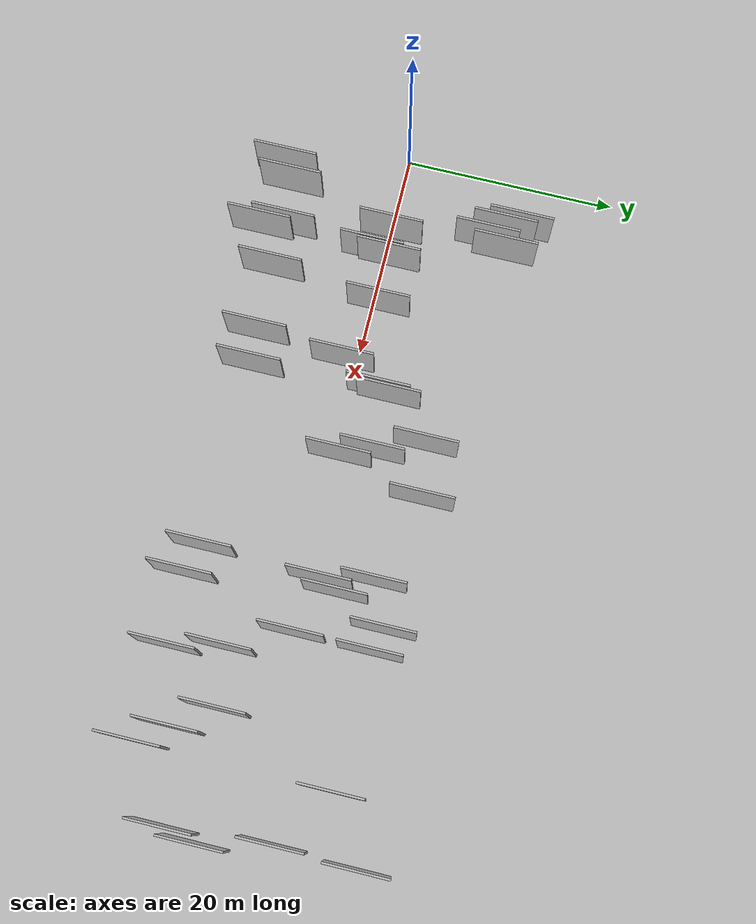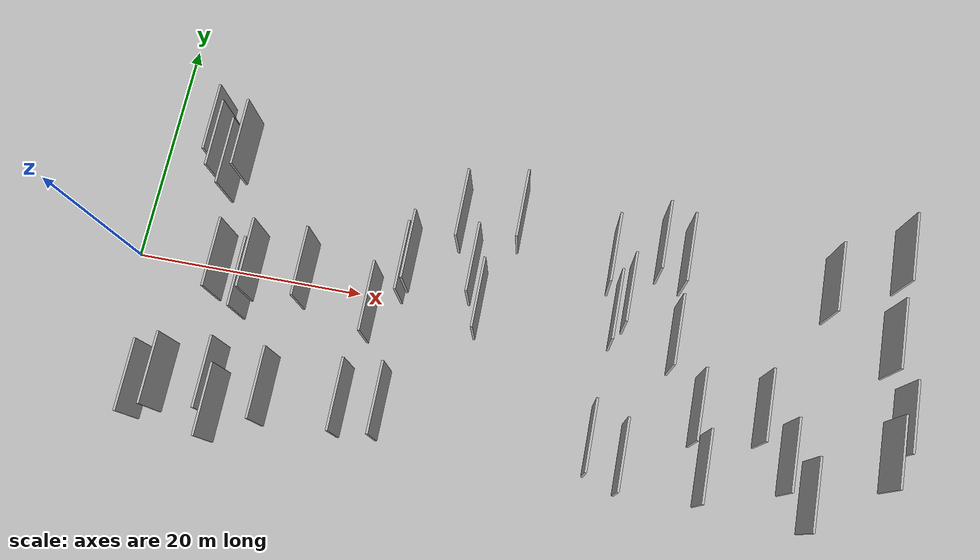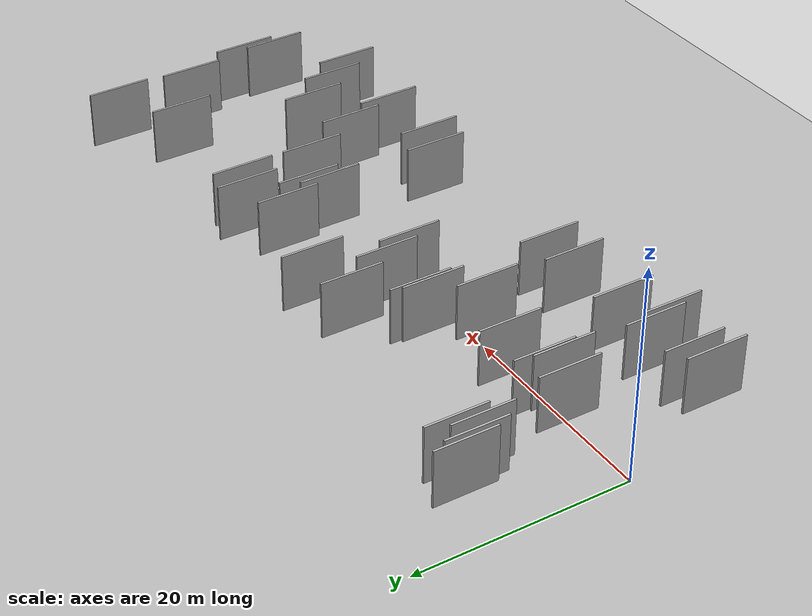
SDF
<?xml version="1.0" encoding="utf-8"?>

<sdf version="1.6">

   <world name="default">

      <gui fullscreen="0">

         <camera name="user_camera">

            <pose>-15 0 4.57585 0 0 0</pose>

            <view_controller>orbit</view_controller>

         </camera>

      </gui>

      <scene>

         <sky>

           <clouds>

             <speed>12</speed>

           </clouds>

         </sky>

         <ambient>0.4 0.4 0.4 1</ambient>

         <background>0.7 0.7 0.7 1</background>

         <shadows>1</shadows>

      </scene>

      <gravity>0 0 -9.8066</gravity>

      <magnetic_field>6e-06 2.3e-05 -4.2e-05</magnetic_field>

      <physics default="0" name="default_physics" type="ode">

         <ode>

            <solver>

               <type>quick</type>

               <iters>10</iters>

               <sor>1.0</sor>

               <use_dynamic_moi_rescaling>0</use_dynamic_moi_rescaling>

            </solver>

            <constraints>

               <cfm>0</cfm>

               <erp>0.2</erp>

               <contact_max_correcting_vel>100</contact_max_correcting_vel>

               <contact_surface_layer>0.001</contact_surface_layer>

            </constraints>

         </ode>

         <max_step_size>0.004</max_step_size>

         <real_time_factor>1</real_time_factor>

         <real_time_update_rate>250</real_time_update_rate>

      </physics>

      <light name="sun" type="directional">

         <cast_shadows>1</cast_shadows>

         <pose>0 0 10 0 0 0</pose>

         <diffuse>0.8 0.8 0.8 1</diffuse>

         <specular>0.2 0.2 0.2 1</specular>

         <attenuation>

            <range>1000</range>

            <constant>0.9</constant>

            <linear>0.01</linear>

            <quadratic>0.001</quadratic>

         </attenuation>

         <direction>-0.5 0.1 -0.9</direction>

      </light>

      <include>

         <name>ground_plane_1</name>

         <uri>model://HANNAS_ground_plane</uri>

         <pose>0 0 0  0 0 0</pose>

      </include>

      <include>

         <name>ground_plane_2</name>

         <uri>model://HANNAS_ground_plane</uri>

         <pose>100 0 0  0 0 0</pose>

      </include>

      <model name="HANNAS_wall_1">

         <static>1</static>

         <pose frame="">24.0969 3.7541 0.0 0.000000 0.000000 1.570796</pose>

         <link name="link">

            <pose frame="">0 0 3.00 0 0 0</pose>

            <collision name="collision">

               <geometry>

                  <box>

                     <size>6.00 0.2 6.00</size>

                  </box>

               </geometry>

               <max_contacts>10</max_contacts>

               <surface>

                  <contact>

                     <ode/>

                  </contact>

                  <bounce/>

                  <friction>

                     <torsional>

                        <ode/>

                     </torsional>

                     <ode/>

                  </friction>

               </surface>

            </collision>

            <visual name="visual">

               <cast_shadows>0</cast_shadows>

               <geometry>

                  <box>

                     <size>6.00 0.2 6.00</size>

                  </box>

               </geometry>

               <material>

                  <script>

                     <uri>model://HANNAS_wall/materials/scripts</uri>

                     <uri>model://HANNAS_wall/materials/textures</uri>

                     <name>vrc/HANNAS_wall</name>

                  </script>

               </material>

            </visual>

            <self_collide>0</self_collide>

            <enable_wind>0</enable_wind>

            <kinematic>0</kinematic>

         </link>

      </model>

      <model name="HANNAS_wall_2">

         <static>1</static>

         <pose frame="">47.4077 0.6217 0.0 0.000000 0.000000 1.570796</pose>

         <link name="link">

            <pose frame="">0 0 3.00 0 0 0</pose>

            <collision name="collision">

               <geometry>

                  <box>

                     <size>6.00 0.2 6.00</size>

                  </box>

               </geometry>

               <max_contacts>10</max_contacts>

               <surface>

                  <contact>

                     <ode/>

                  </contact>

                  <bounce/>

                  <friction>

                     <torsional>

                        <ode/>

                     </torsional>

                     <ode/>

                  </friction>

               </surface>

            </collision>

            <visual name="visual">

               <cast_shadows>0</cast_shadows>

               <geometry>

                  <box>

                     <size>6.00 0.2 6.00</size>

                  </box>

               </geometry>

               <material>

                  <script>

                     <uri>model://HANNAS_wall/materials/scripts</uri>

                     <uri>model://HANNAS_wall/materials/textures</uri>

                     <name>vrc/HANNAS_wall</name>

                  </script>

               </material>

            </visual>

            <self_collide>0</self_collide>

            <enable_wind>0</enable_wind>

            <kinematic>0</kinematic>

         </link>

      </model>

      <model name="HANNAS_wall_3">

         <static>1</static>

         <pose frame="">41.2403 6.6103 0.0 0.000000 0.000000 1.570796</pose>

         <link name="link">

            <pose frame="">0 0 3.00 0 0 0</pose>

            <collision name="collision">

               <geometry>

                  <box>

                     <size>6.00 0.2 6.00</size>

                  </box>

               </geometry>

               <max_contacts>10</max_contacts>

               <surface>

                  <contact>

                     <ode/>

                  </contact>

                  <bounce/>

                  <friction>

                     <torsional>

                        <ode/>

                     </torsional>

                     <ode/>

                  </friction>

               </surface>

            </collision>

            <visual name="visual">

               <cast_shadows>0</cast_shadows>

               <geometry>

                  <box>

                     <size>6.00 0.2 6.00</size>

                  </box>

               </geometry>

               <material>

                  <script>

                     <uri>model://HANNAS_wall/materials/scripts</uri>

                     <uri>model://HANNAS_wall/materials/textures</uri>

                     <name>vrc/HANNAS_wall</name>

                  </script>

               </material>

            </visual>

            <self_collide>0</self_collide>

            <enable_wind>0</enable_wind>

            <kinematic>0</kinematic>

         </link>

      </model>

      <model name="HANNAS_wall_4">

         <static>1</static>

         <pose frame="">65.8121 11.1153 0.0 0.000000 0.000000 1.570796</pose>

         <link name="link">

            <pose frame="">0 0 3.00 0 0 0</pose>

            <collision name="collision">

               <geometry>

                  <box>

                     <size>6.00 0.2 6.00</size>

                  </box>

               </geometry>

               <max_contacts>10</max_contacts>

               <surface>

                  <contact>

                     <ode/>

                  </contact>

                  <bounce/>

                  <friction>

                     <torsional>

                        <ode/>

                     </torsional>

                     <ode/>

                  </friction>

               </surface>

            </collision>

            <visual name="visual">

               <cast_shadows>0</cast_shadows>

               <geometry>

                  <box>

                     <size>6.00 0.2 6.00</size>

                  </box>

               </geometry>

               <material>

                  <script>

                     <uri>model://HANNAS_wall/materials/scripts</uri>

                     <uri>model://HANNAS_wall/materials/textures</uri>

                     <name>vrc/HANNAS_wall</name>

                  </script>

               </material>

            </visual>

            <self_collide>0</self_collide>

            <enable_wind>0</enable_wind>

            <kinematic>0</kinematic>

         </link>

      </model>

      <model name="HANNAS_wall_5">

         <static>1</static>

         <pose frame="">3.9271 -11.1052 0.0 0.000000 0.000000 1.570796</pose>

         <link name="link">

            <pose frame="">0 0 3.00 0 0 0</pose>

            <collision name="collision">

               <geometry>

                  <box>

                     <size>6.00 0.2 6.00</size>

                  </box>

               </geometry>

               <max_contacts>10</max_contacts>

               <surface>

                  <contact>

                     <ode/>

                  </contact>

                  <bounce/>

                  <friction>

                     <torsional>

                        <ode/>

                     </torsional>

                     <ode/>

                  </friction>

               </surface>

            </collision>

            <visual name="visual">

               <cast_shadows>0</cast_shadows>

               <geometry>

                  <box>

                     <size>6.00 0.2 6.00</size>

                  </box>

               </geometry>

               <material>

                  <script>

                     <uri>model://HANNAS_wall/materials/scripts</uri>

                     <uri>model://HANNAS_wall/materials/textures</uri>

                     <name>vrc/HANNAS_wall</name>

                  </script>

               </material>

            </visual>

            <self_collide>0</self_collide>

            <enable_wind>0</enable_wind>

            <kinematic>0</kinematic>

         </link>

      </model>

      <model name="HANNAS_wall_6">

         <static>1</static>

         <pose frame="">66.9585 -3.0367 0.0 0.000000 0.000000 1.570796</pose>

         <link name="link">

            <pose frame="">0 0 3.00 0 0 0</pose>

            <collision name="collision">

               <geometry>

                  <box>

                     <size>6.00 0.2 6.00</size>

                  </box>

               </geometry>

               <max_contacts>10</max_contacts>

               <surface>

                  <contact>

                     <ode/>

                  </contact>

                  <bounce/>

                  <friction>

                     <torsional>

                        <ode/>

                     </torsional>

                     <ode/>

                  </friction>

               </surface>

            </collision>

            <visual name="visual">

               <cast_shadows>0</cast_shadows>

               <geometry>

                  <box>

                     <size>6.00 0.2 6.00</size>

                  </box>

               </geometry>

               <material>

                  <script>

                     <uri>model://HANNAS_wall/materials/scripts</uri>

                     <uri>model://HANNAS_wall/materials/textures</uri>

                     <name>vrc/HANNAS_wall</name>

                  </script>

               </material>

            </visual>

            <self_collide>0</self_collide>

            <enable_wind>0</enable_wind>

            <kinematic>0</kinematic>

         </link>

      </model>

      <model name="HANNAS_wall_7">

         <static>1</static>

         <pose frame="">42.1448 1.8223 0.0 0.000000 0.000000 1.570796</pose>

         <link name="link">

            <pose frame="">0 0 3.00 0 0 0</pose>

            <collision name="collision">

               <geometry>

                  <box>

                     <size>6.00 0.2 6.00</size>

                  </box>

               </geometry>

               <max_contacts>10</max_contacts>

               <surface>

                  <contact>

                     <ode/>

                  </contact>

                  <bounce/>

                  <friction>

                     <torsional>

                        <ode/>

                     </torsional>

                     <ode/>

                  </friction>

               </surface>

            </collision>

            <visual name="visual">

               <cast_shadows>0</cast_shadows>

               <geometry>

                  <box>

                     <size>6.00 0.2 6.00</size>

                  </box>

               </geometry>

               <material>

                  <script>

                     <uri>model://HANNAS_wall/materials/scripts</uri>

                     <uri>model://HANNAS_wall/materials/textures</uri>

                     <name>vrc/HANNAS_wall</name>

                  </script>

               </material>

            </visual>

            <self_collide>0</self_collide>

            <enable_wind>0</enable_wind>

            <kinematic>0</kinematic>

         </link>

      </model>

      <model name="HANNAS_wall_8">

         <static>1</static>

         <pose frame="">30.6355 0.7155 0.0 0.000000 0.000000 1.570796</pose>

         <link name="link">

            <pose frame="">0 0 3.00 0 0 0</pose>

            <collision name="collision">

               <geometry>

                  <box>

                     <size>6.00 0.2 6.00</size>

                  </box>

               </geometry>

               <max_contacts>10</max_contacts>

               <surface>

                  <contact>

                     <ode/>

                  </contact>

                  <bounce/>

                  <friction>

                     <torsional>

                        <ode/>

                     </torsional>

                     <ode/>

                  </friction>

               </surface>

            </collision>

            <visual name="visual">

               <cast_shadows>0</cast_shadows>

               <geometry>

                  <box>

                     <size>6.00 0.2 6.00</size>

                  </box>

               </geometry>

               <material>

                  <script>

                     <uri>model://HANNAS_wall/materials/scripts</uri>

                     <uri>model://HANNAS_wall/materials/textures</uri>

                     <name>vrc/HANNAS_wall</name>

                  </script>

               </material>

            </visual>

            <self_collide>0</self_collide>

            <enable_wind>0</enable_wind>

            <kinematic>0</kinematic>

         </link>

      </model>

      <model name="HANNAS_wall_9">

         <static>1</static>

         <pose frame="">27.8346 8.1370 0.0 0.000000 0.000000 1.570796</pose>

         <link name="link">

            <pose frame="">0 0 3.00 0 0 0</pose>

            <collision name="collision">

               <geometry>

                  <box>

                     <size>6.00 0.2 6.00</size>

                  </box>

               </geometry>

               <max_contacts>10</max_contacts>

               <surface>

                  <contact>

                     <ode/>

                  </contact>

                  <bounce/>

                  <friction>

                     <torsional>

                        <ode/>

                     </torsional>

                     <ode/>

                  </friction>

               </surface>

            </collision>

            <visual name="visual">

               <cast_shadows>0</cast_shadows>

               <geometry>

                  <box>

                     <size>6.00 0.2 6.00</size>

                  </box>

               </geometry>

               <material>

                  <script>

                     <uri>model://HANNAS_wall/materials/scripts</uri>

                     <uri>model://HANNAS_wall/materials/textures</uri>

                     <name>vrc/HANNAS_wall</name>

                  </script>

               </material>

            </visual>

            <self_collide>0</self_collide>

            <enable_wind>0</enable_wind>

            <kinematic>0</kinematic>

         </link>

      </model>

      <model name="HANNAS_wall_10">

         <static>1</static>

         <pose frame="">41.7256 -9.1424 0.0 0.000000 0.000000 1.570796</pose>

         <link name="link">

            <pose frame="">0 0 3.00 0 0 0</pose>

            <collision name="collision">

               <geometry>

                  <box>

                     <size>6.00 0.2 6.00</size>

                  </box>

               </geometry>

               <max_contacts>10</max_contacts>

               <surface>

                  <contact>

                     <ode/>

                  </contact>

                  <bounce/>

                  <friction>

                     <torsional>

                        <ode/>

                     </torsional>

                     <ode/>

                  </friction>

               </surface>

            </collision>

            <visual name="visual">

               <cast_shadows>0</cast_shadows>

               <geometry>

                  <box>

                     <size>6.00 0.2 6.00</size>

                  </box>

               </geometry>

               <material>

                  <script>

                     <uri>model://HANNAS_wall/materials/scripts</uri>

                     <uri>model://HANNAS_wall/materials/textures</uri>

                     <name>vrc/HANNAS_wall</name>

                  </script>

               </material>

            </visual>

            <self_collide>0</self_collide>

            <enable_wind>0</enable_wind>

            <kinematic>0</kinematic>

         </link>

      </model>

      <model name="HANNAS_wall_11">

         <static>1</static>

         <pose frame="">51.1057 -9.8999 0.0 0.000000 0.000000 1.570796</pose>

         <link name="link">

            <pose frame="">0 0 3.00 0 0 0</pose>

            <collision name="collision">

               <geometry>

                  <box>

                     <size>6.00 0.2 6.00</size>

                  </box>

               </geometry>

               <max_contacts>10</max_contacts>

               <surface>

                  <contact>

                     <ode/>

                  </contact>

                  <bounce/>

                  <friction>

                     <torsional>

                        <ode/>

                     </torsional>

                     <ode/>

                  </friction>

               </surface>

            </collision>

            <visual name="visual">

               <cast_shadows>0</cast_shadows>

               <geometry>

                  <box>

                     <size>6.00 0.2 6.00</size>

                  </box>

               </geometry>

               <material>

                  <script>

                     <uri>model://HANNAS_wall/materials/scripts</uri>

                     <uri>model://HANNAS_wall/materials/textures</uri>

                     <name>vrc/HANNAS_wall</name>

                  </script>

               </material>

            </visual>

            <self_collide>0</self_collide>

            <enable_wind>0</enable_wind>

            <kinematic>0</kinematic>

         </link>

      </model>

      <model name="HANNAS_wall_12">

         <static>1</static>

         <pose frame="">20.9469 -9.6043 0.0 0.000000 0.000000 1.570796</pose>

         <link name="link">

            <pose frame="">0 0 3.00 0 0 0</pose>

            <collision name="collision">

               <geometry>

                  <box>

                     <size>6.00 0.2 6.00</size>

                  </box>

               </geometry>

               <max_contacts>10</max_contacts>

               <surface>

                  <contact>

                     <ode/>

                  </contact>

                  <bounce/>

                  <friction>

                     <torsional>

                        <ode/>

                     </torsional>

                     <ode/>

                  </friction>

               </surface>

            </collision>

            <visual name="visual">

               <cast_shadows>0</cast_shadows>

               <geometry>

                  <box>

                     <size>6.00 0.2 6.00</size>

                  </box>

               </geometry>

               <material>

                  <script>

                     <uri>model://HANNAS_wall/materials/scripts</uri>

                     <uri>model://HANNAS_wall/materials/textures</uri>

                     <name>vrc/HANNAS_wall</name>

                  </script>

               </material>

            </visual>

            <self_collide>0</self_collide>

            <enable_wind>0</enable_wind>

            <kinematic>0</kinematic>

         </link>

      </model>

      <model name="HANNAS_wall_13">

         <static>1</static>

         <pose frame="">29.6212 3.6095 0.0 0.000000 0.000000 1.570796</pose>

         <link name="link">

            <pose frame="">0 0 3.00 0 0 0</pose>

            <collision name="collision">

               <geometry>

                  <box>

                     <size>6.00 0.2 6.00</size>

                  </box>

               </geometry>

               <max_contacts>10</max_contacts>

               <surface>

                  <contact>

                     <ode/>

                  </contact>

                  <bounce/>

                  <friction>

                     <torsional>

                        <ode/>

                     </torsional>

                     <ode/>

                  </friction>

               </surface>

            </collision>

            <visual name="visual">

               <cast_shadows>0</cast_shadows>

               <geometry>

                  <box>

                     <size>6.00 0.2 6.00</size>

                  </box>

               </geometry>

               <material>

                  <script>

                     <uri>model://HANNAS_wall/materials/scripts</uri>

                     <uri>model://HANNAS_wall/materials/textures</uri>

                     <name>vrc/HANNAS_wall</name>

                  </script>

               </material>

            </visual>

            <self_collide>0</self_collide>

            <enable_wind>0</enable_wind>

            <kinematic>0</kinematic>

         </link>

      </model>

      <model name="HANNAS_wall_14">

         <static>1</static>

         <pose frame="">66.2254 -6.0044 0.0 0.000000 0.000000 1.570796</pose>

         <link name="link">

            <pose frame="">0 0 3.00 0 0 0</pose>

            <collision name="collision">

               <geometry>

                  <box>

                     <size>6.00 0.2 6.00</size>

                  </box>

               </geometry>

               <max_contacts>10</max_contacts>

               <surface>

                  <contact>

                     <ode/>

                  </contact>

                  <bounce/>

                  <friction>

                     <torsional>

                        <ode/>

                     </torsional>

                     <ode/>

                  </friction>

               </surface>

            </collision>

            <visual name="visual">

               <cast_shadows>0</cast_shadows>

               <geometry>

                  <box>

                     <size>6.00 0.2 6.00</size>

                  </box>

               </geometry>

               <material>

                  <script>

                     <uri>model://HANNAS_wall/materials/scripts</uri>

                     <uri>model://HANNAS_wall/materials/textures</uri>

                     <name>vrc/HANNAS_wall</name>

                  </script>

               </material>

            </visual>

            <self_collide>0</self_collide>

            <enable_wind>0</enable_wind>

            <kinematic>0</kinematic>

         </link>

      </model>

      <model name="HANNAS_wall_15">

         <static>1</static>

         <pose frame="">23.7999 2.7132 0.0 0.000000 0.000000 1.570796</pose>

         <link name="link">

            <pose frame="">0 0 3.00 0 0 0</pose>

            <collision name="collision">

               <geometry>

                  <box>

                     <size>6.00 0.2 6.00</size>

                  </box>

               </geometry>

               <max_contacts>10</max_contacts>

               <surface>

                  <contact>

                     <ode/>

                  </contact>

                  <bounce/>

                  <friction>

                     <torsional>

                        <ode/>

                     </torsional>

                     <ode/>

                  </friction>

               </surface>

            </collision>

            <visual name="visual">

               <cast_shadows>0</cast_shadows>

               <geometry>

                  <box>

                     <size>6.00 0.2 6.00</size>

                  </box>

               </geometry>

               <material>

                  <script>

                     <uri>model://HANNAS_wall/materials/scripts</uri>

                     <uri>model://HANNAS_wall/materials/textures</uri>

                     <name>vrc/HANNAS_wall</name>

                  </script>

               </material>

            </visual>

            <self_collide>0</self_collide>

            <enable_wind>0</enable_wind>

            <kinematic>0</kinematic>

         </link>

      </model>

      <model name="HANNAS_wall_16">

         <static>1</static>

         <pose frame="">50.0463 -5.0966 0.0 0.000000 0.000000 1.570796</pose>

         <link name="link">

            <pose frame="">0 0 3.00 0 0 0</pose>

            <collision name="collision">

               <geometry>

                  <box>

                     <size>6.00 0.2 6.00</size>

                  </box>

               </geometry>

               <max_contacts>10</max_contacts>

               <surface>

                  <contact>

                     <ode/>

                  </contact>

                  <bounce/>

                  <friction>

                     <torsional>

                        <ode/>

                     </torsional>

                     <ode/>

                  </friction>

               </surface>

            </collision>

            <visual name="visual">

               <cast_shadows>0</cast_shadows>

               <geometry>

                  <box>

                     <size>6.00 0.2 6.00</size>

                  </box>

               </geometry>

               <material>

                  <script>

                     <uri>model://HANNAS_wall/materials/scripts</uri>

                     <uri>model://HANNAS_wall/materials/textures</uri>

                     <name>vrc/HANNAS_wall</name>

                  </script>

               </material>

            </visual>

            <self_collide>0</self_collide>

            <enable_wind>0</enable_wind>

            <kinematic>0</kinematic>

         </link>

      </model>

      <model name="HANNAS_wall_17">

         <static>1</static>

         <pose frame="">15.5352 0.6839 0.0 0.000000 0.000000 1.570796</pose>

         <link name="link">

            <pose frame="">0 0 3.00 0 0 0</pose>

            <collision name="collision">

               <geometry>

                  <box>

                     <size>6.00 0.2 6.00</size>

                  </box>

               </geometry>

               <max_contacts>10</max_contacts>

               <surface>

                  <contact>

                     <ode/>

                  </contact>

                  <bounce/>

                  <friction>

                     <torsional>

                        <ode/>

                     </torsional>

                     <ode/>

                  </friction>

               </surface>

            </collision>

            <visual name="visual">

               <cast_shadows>0</cast_shadows>

               <geometry>

                  <box>

                     <size>6.00 0.2 6.00</size>

                  </box>

               </geometry>

               <material>

                  <script>

                     <uri>model://HANNAS_wall/materials/scripts</uri>

                     <uri>model://HANNAS_wall/materials/textures</uri>

                     <name>vrc/HANNAS_wall</name>

                  </script>

               </material>

            </visual>

            <self_collide>0</self_collide>

            <enable_wind>0</enable_wind>

            <kinematic>0</kinematic>

         </link>

      </model>

      <model name="HANNAS_wall_18">

         <static>1</static>

         <pose frame="">21.6545 -1.2275 0.0 0.000000 0.000000 1.570796</pose>

         <link name="link">

            <pose frame="">0 0 3.00 0 0 0</pose>

            <collision name="collision">

               <geometry>

                  <box>

                     <size>6.00 0.2 6.00</size>

                  </box>

               </geometry>

               <max_contacts>10</max_contacts>

               <surface>

                  <contact>

                     <ode/>

                  </contact>

                  <bounce/>

                  <friction>

                     <torsional>

                        <ode/>

                     </torsional>

                     <ode/>

                  </friction>

               </surface>

            </collision>

            <visual name="visual">

               <cast_shadows>0</cast_shadows>

               <geometry>

                  <box>

                     <size>6.00 0.2 6.00</size>

                  </box>

               </geometry>

               <material>

                  <script>

                     <uri>model://HANNAS_wall/materials/scripts</uri>

                     <uri>model://HANNAS_wall/materials/textures</uri>

                     <name>vrc/HANNAS_wall</name>

                  </script>

               </material>

            </visual>

            <self_collide>0</self_collide>

            <enable_wind>0</enable_wind>

            <kinematic>0</kinematic>

         </link>

      </model>

      <model name="HANNAS_wall_19">

         <static>1</static>

         <pose frame="">5.6388 10.5026 0.0 0.000000 0.000000 1.570796</pose>

         <link name="link">

            <pose frame="">0 0 3.00 0 0 0</pose>

            <collision name="collision">

               <geometry>

                  <box>

                     <size>6.00 0.2 6.00</size>

                  </box>

               </geometry>

               <max_contacts>10</max_contacts>

               <surface>

                  <contact>

                     <ode/>

                  </contact>

                  <bounce/>

                  <friction>

                     <torsional>

                        <ode/>

                     </torsional>

                     <ode/>

                  </friction>

               </surface>

            </collision>

            <visual name="visual">

               <cast_shadows>0</cast_shadows>

               <geometry>

                  <box>

                     <size>6.00 0.2 6.00</size>

                  </box>

               </geometry>

               <material>

                  <script>

                     <uri>model://HANNAS_wall/materials/scripts</uri>

                     <uri>model://HANNAS_wall/materials/textures</uri>

                     <name>vrc/HANNAS_wall</name>

                  </script>

               </material>

            </visual>

            <self_collide>0</self_collide>

            <enable_wind>0</enable_wind>

            <kinematic>0</kinematic>

         </link>

      </model>

      <model name="HANNAS_wall_20">

         <static>1</static>

         <pose frame="">10.9119 0.5758 0.0 0.000000 0.000000 1.570796</pose>

         <link name="link">

            <pose frame="">0 0 3.00 0 0 0</pose>

            <collision name="collision">

               <geometry>

                  <box>

                     <size>6.00 0.2 6.00</size>

                  </box>

               </geometry>

               <max_contacts>10</max_contacts>

               <surface>

                  <contact>

                     <ode/>

                  </contact>

                  <bounce/>

                  <friction>

                     <torsional>

                        <ode/>

                     </torsional>

                     <ode/>

                  </friction>

               </surface>

            </collision>

            <visual name="visual">

               <cast_shadows>0</cast_shadows>

               <geometry>

                  <box>

                     <size>6.00 0.2 6.00</size>

                  </box>

               </geometry>

               <material>

                  <script>

                     <uri>model://HANNAS_wall/materials/scripts</uri>

                     <uri>model://HANNAS_wall/materials/textures</uri>

                     <name>vrc/HANNAS_wall</name>

                  </script>

               </material>

            </visual>

            <self_collide>0</self_collide>

            <enable_wind>0</enable_wind>

            <kinematic>0</kinematic>

         </link>

      </model>

      <model name="HANNAS_wall_21">

         <static>1</static>

         <pose frame="">55.4376 -4.1872 0.0 0.000000 0.000000 1.570796</pose>

         <link name="link">

            <pose frame="">0 0 3.00 0 0 0</pose>

            <collision name="collision">

               <geometry>

                  <box>

                     <size>6.00 0.2 6.00</size>

                  </box>

               </geometry>

               <max_contacts>10</max_contacts>

               <surface>

                  <contact>

                     <ode/>

                  </contact>

                  <bounce/>

                  <friction>

                     <torsional>

                        <ode/>

                     </torsional>

                     <ode/>

                  </friction>

               </surface>

            </collision>

            <visual name="visual">

               <cast_shadows>0</cast_shadows>

               <geometry>

                  <box>

                     <size>6.00 0.2 6.00</size>

                  </box>

               </geometry>

               <material>

                  <script>

                     <uri>model://HANNAS_wall/materials/scripts</uri>

                     <uri>model://HANNAS_wall/materials/textures</uri>

                     <name>vrc/HANNAS_wall</name>

                  </script>

               </material>

            </visual>

            <self_collide>0</self_collide>

            <enable_wind>0</enable_wind>

            <kinematic>0</kinematic>

         </link>

      </model>

      <model name="HANNAS_wall_22">

         <static>1</static>

         <pose frame="">44.4645 -10.1866 0.0 0.000000 0.000000 1.570796</pose>

         <link name="link">

            <pose frame="">0 0 3.00 0 0 0</pose>

            <collision name="collision">

               <geometry>

                  <box>

                     <size>6.00 0.2 6.00</size>

                  </box>

               </geometry>

               <max_contacts>10</max_contacts>

               <surface>

                  <contact>

                     <ode/>

                  </contact>

                  <bounce/>

                  <friction>

                     <torsional>

                        <ode/>

                     </torsional>

                     <ode/>

                  </friction>

               </surface>

            </collision>

            <visual name="visual">

               <cast_shadows>0</cast_shadows>

               <geometry>

                  <box>

                     <size>6.00 0.2 6.00</size>

                  </box>

               </geometry>

               <material>

                  <script>

                     <uri>model://HANNAS_wall/materials/scripts</uri>

                     <uri>model://HANNAS_wall/materials/textures</uri>

                     <name>vrc/HANNAS_wall</name>

                  </script>

               </material>

            </visual>

            <self_collide>0</self_collide>

            <enable_wind>0</enable_wind>

            <kinematic>0</kinematic>

         </link>

      </model>

      <model name="HANNAS_wall_23">

         <static>1</static>

         <pose frame="">5.6217 -10.2135 0.0 0.000000 0.000000 1.570796</pose>

         <link name="link">

            <pose frame="">0 0 3.00 0 0 0</pose>

            <collision name="collision">

               <geometry>

                  <box>

                     <size>6.00 0.2 6.00</size>

                  </box>

               </geometry>

               <max_contacts>10</max_contacts>

               <surface>

                  <contact>

                     <ode/>

                  </contact>

                  <bounce/>

                  <friction>

                     <torsional>

                        <ode/>

                     </torsional>

                     <ode/>

                  </friction>

               </surface>

            </collision>

            <visual name="visual">

               <cast_shadows>0</cast_shadows>

               <geometry>

                  <box>

                     <size>6.00 0.2 6.00</size>

                  </box>

               </geometry>

               <material>

                  <script>

                     <uri>model://HANNAS_wall/materials/scripts</uri>

                     <uri>model://HANNAS_wall/materials/textures</uri>

                     <name>vrc/HANNAS_wall</name>

                  </script>

               </material>

            </visual>

            <self_collide>0</self_collide>

            <enable_wind>0</enable_wind>

            <kinematic>0</kinematic>

         </link>

      </model>

      <model name="HANNAS_wall_24">

         <static>1</static>

         <pose frame="">59.9822 7.4423 0.0 0.000000 0.000000 1.570796</pose>

         <link name="link">

            <pose frame="">0 0 3.00 0 0 0</pose>

            <collision name="collision">

               <geometry>

                  <box>

                     <size>6.00 0.2 6.00</size>

                  </box>

               </geometry>

               <max_contacts>10</max_contacts>

               <surface>

                  <contact>

                     <ode/>

                  </contact>

                  <bounce/>

                  <friction>

                     <torsional>

                        <ode/>

                     </torsional>

                     <ode/>

                  </friction>

               </surface>

            </collision>

            <visual name="visual">

               <cast_shadows>0</cast_shadows>

               <geometry>

                  <box>

                     <size>6.00 0.2 6.00</size>

                  </box>

               </geometry>

               <material>

                  <script>

                     <uri>model://HANNAS_wall/materials/scripts</uri>

                     <uri>model://HANNAS_wall/materials/textures</uri>

                     <name>vrc/HANNAS_wall</name>

                  </script>

               </material>

            </visual>

            <self_collide>0</self_collide>

            <enable_wind>0</enable_wind>

            <kinematic>0</kinematic>

         </link>

      </model>

      <model name="HANNAS_wall_25">

         <static>1</static>

         <pose frame="">59.8294 -10.5211 0.0 0.000000 0.000000 1.570796</pose>

         <link name="link">

            <pose frame="">0 0 3.00 0 0 0</pose>

            <collision name="collision">

               <geometry>

                  <box>

                     <size>6.00 0.2 6.00</size>

                  </box>

               </geometry>

               <max_contacts>10</max_contacts>

               <surface>

                  <contact>

                     <ode/>

                  </contact>

                  <bounce/>

                  <friction>

                     <torsional>

                        <ode/>

                     </torsional>

                     <ode/>

                  </friction>

               </surface>

            </collision>

            <visual name="visual">

               <cast_shadows>0</cast_shadows>

               <geometry>

                  <box>

                     <size>6.00 0.2 6.00</size>

                  </box>

               </geometry>

               <material>

                  <script>

                     <uri>model://HANNAS_wall/materials/scripts</uri>

                     <uri>model://HANNAS_wall/materials/textures</uri>

                     <name>vrc/HANNAS_wall</name>

                  </script>

               </material>

            </visual>

            <self_collide>0</self_collide>

            <enable_wind>0</enable_wind>

            <kinematic>0</kinematic>

         </link>

      </model>

      <model name="HANNAS_wall_26">

         <static>1</static>

         <pose frame="">47.4507 7.7507 0.0 0.000000 0.000000 1.570796</pose>

         <link name="link">

            <pose frame="">0 0 3.00 0 0 0</pose>

            <collision name="collision">

               <geometry>

                  <box>

                     <size>6.00 0.2 6.00</size>

                  </box>

               </geometry>

               <max_contacts>10</max_contacts>

               <surface>

                  <contact>

                     <ode/>

                  </contact>

                  <bounce/>

                  <friction>

                     <torsional>

                        <ode/>

                     </torsional>

                     <ode/>

                  </friction>

               </surface>

            </collision>

            <visual name="visual">

               <cast_shadows>0</cast_shadows>

               <geometry>

                  <box>

                     <size>6.00 0.2 6.00</size>

                  </box>

               </geometry>

               <material>

                  <script>

                     <uri>model://HANNAS_wall/materials/scripts</uri>

                     <uri>model://HANNAS_wall/materials/textures</uri>

                     <name>vrc/HANNAS_wall</name>

                  </script>

               </material>

            </visual>

            <self_collide>0</self_collide>

            <enable_wind>0</enable_wind>

            <kinematic>0</kinematic>

         </link>

      </model>

      <model name="HANNAS_wall_27">

         <static>1</static>

         <pose frame="">9.9920 -9.7505 0.0 0.000000 0.000000 1.570796</pose>

         <link name="link">

            <pose frame="">0 0 3.00 0 0 0</pose>

            <collision name="collision">

               <geometry>

                  <box>

                     <size>6.00 0.2 6.00</size>

                  </box>

               </geometry>

               <max_contacts>10</max_contacts>

               <surface>

                  <contact>

                     <ode/>

                  </contact>

                  <bounce/>

                  <friction>

                     <torsional>

                        <ode/>

                     </torsional>

                     <ode/>

                  </friction>

               </surface>

            </collision>

            <visual name="visual">

               <cast_shadows>0</cast_shadows>

               <geometry>

                  <box>

                     <size>6.00 0.2 6.00</size>

                  </box>

               </geometry>

               <material>

                  <script>

                     <uri>model://HANNAS_wall/materials/scripts</uri>

                     <uri>model://HANNAS_wall/materials/textures</uri>

                     <name>vrc/HANNAS_wall</name>

                  </script>

               </material>

            </visual>

            <self_collide>0</self_collide>

            <enable_wind>0</enable_wind>

            <kinematic>0</kinematic>

         </link>

      </model>

      <model name="HANNAS_wall_28">

         <static>1</static>

         <pose frame="">43.0374 3.4647 0.0 0.000000 0.000000 1.570796</pose>

         <link name="link">

            <pose frame="">0 0 3.00 0 0 0</pose>

            <collision name="collision">

               <geometry>

                  <box>

                     <size>6.00 0.2 6.00</size>

                  </box>

               </geometry>

               <max_contacts>10</max_contacts>

               <surface>

                  <contact>

                     <ode/>

                  </contact>

                  <bounce/>

                  <friction>

                     <torsional>

                        <ode/>

                     </torsional>

                     <ode/>

                  </friction>

               </surface>

            </collision>

            <visual name="visual">

               <cast_shadows>0</cast_shadows>

               <geometry>

                  <box>

                     <size>6.00 0.2 6.00</size>

                  </box>

               </geometry>

               <material>

                  <script>

                     <uri>model://HANNAS_wall/materials/scripts</uri>

                     <uri>model://HANNAS_wall/materials/textures</uri>

                     <name>vrc/HANNAS_wall</name>

                  </script>

               </material>

            </visual>

            <self_collide>0</self_collide>

            <enable_wind>0</enable_wind>

            <kinematic>0</kinematic>

         </link>

      </model>

      <model name="HANNAS_wall_29">

         <static>1</static>

         <pose frame="">7.7619 10.9611 0.0 0.000000 0.000000 1.570796</pose>

         <link name="link">

            <pose frame="">0 0 3.00 0 0 0</pose>

            <collision name="collision">

               <geometry>

                  <box>

                     <size>6.00 0.2 6.00</size>

                  </box>

               </geometry>

               <max_contacts>10</max_contacts>

               <surface>

                  <contact>

                     <ode/>

                  </contact>

                  <bounce/>

                  <friction>

                     <torsional>

                        <ode/>

                     </torsional>

                     <ode/>

                  </friction>

               </surface>

            </collision>

            <visual name="visual">

               <cast_shadows>0</cast_shadows>

               <geometry>

                  <box>

                     <size>6.00 0.2 6.00</size>

                  </box>

               </geometry>

               <material>

                  <script>

                     <uri>model://HANNAS_wall/materials/scripts</uri>

                     <uri>model://HANNAS_wall/materials/textures</uri>

                     <name>vrc/HANNAS_wall</name>

                  </script>

               </material>

            </visual>

            <self_collide>0</self_collide>

            <enable_wind>0</enable_wind>

            <kinematic>0</kinematic>

         </link>

      </model>

      <model name="HANNAS_wall_30">

         <static>1</static>

         <pose frame="">10.5999 -11.8966 0.0 0.000000 0.000000 1.570796</pose>

         <link name="link">

            <pose frame="">0 0 3.00 0 0 0</pose>

            <collision name="collision">

               <geometry>

                  <box>

                     <size>6.00 0.2 6.00</size>

                  </box>

               </geometry>

               <max_contacts>10</max_contacts>

               <surface>

                  <contact>

                     <ode/>

                  </contact>

                  <bounce/>

                  <friction>

                     <torsional>

                        <ode/>

                     </torsional>

                     <ode/>

                  </friction>

               </surface>

            </collision>

            <visual name="visual">

               <cast_shadows>0</cast_shadows>

               <geometry>

                  <box>

                     <size>6.00 0.2 6.00</size>

                  </box>

               </geometry>

               <material>

                  <script>

                     <uri>model://HANNAS_wall/materials/scripts</uri>

                     <uri>model://HANNAS_wall/materials/textures</uri>

                     <name>vrc/HANNAS_wall</name>

                  </script>

               </material>

            </visual>

            <self_collide>0</self_collide>

            <enable_wind>0</enable_wind>

            <kinematic>0</kinematic>

         </link>

      </model>

      <model name="HANNAS_wall_31">

         <static>1</static>

         <pose frame="">45.2620 8.4452 0.0 0.000000 0.000000 1.570796</pose>

         <link name="link">

            <pose frame="">0 0 3.00 0 0 0</pose>

            <collision name="collision">

               <geometry>

                  <box>

                     <size>6.00 0.2 6.00</size>

                  </box>

               </geometry>

               <max_contacts>10</max_contacts>

               <surface>

                  <contact>

                     <ode/>

                  </contact>

                  <bounce/>

                  <friction>

                     <torsional>

                        <ode/>

                     </torsional>

                     <ode/>

                  </friction>

               </surface>

            </collision>

            <visual name="visual">

               <cast_shadows>0</cast_shadows>

               <geometry>

                  <box>

                     <size>6.00 0.2 6.00</size>

                  </box>

               </geometry>

               <material>

                  <script>

                     <uri>model://HANNAS_wall/materials/scripts</uri>

                     <uri>model://HANNAS_wall/materials/textures</uri>

                     <name>vrc/HANNAS_wall</name>

                  </script>

               </material>

            </visual>

            <self_collide>0</self_collide>

            <enable_wind>0</enable_wind>

            <kinematic>0</kinematic>

         </link>

      </model>

      <model name="HANNAS_wall_32">

         <static>1</static>

         <pose frame="">32.8908 8.9805 0.0 0.000000 0.000000 1.570796</pose>

         <link name="link">

            <pose frame="">0 0 3.00 0 0 0</pose>

            <collision name="collision">

               <geometry>

                  <box>

                     <size>6.00 0.2 6.00</size>

                  </box>

               </geometry>

               <max_contacts>10</max_contacts>

               <surface>

                  <contact>

                     <ode/>

                  </contact>

                  <bounce/>

                  <friction>

                     <torsional>

                        <ode/>

                     </torsional>

                     <ode/>

                  </friction>

               </surface>

            </collision>

            <visual name="visual">

               <cast_shadows>0</cast_shadows>

               <geometry>

                  <box>

                     <size>6.00 0.2 6.00</size>

                  </box>

               </geometry>

               <material>

                  <script>

                     <uri>model://HANNAS_wall/materials/scripts</uri>

                     <uri>model://HANNAS_wall/materials/textures</uri>

                     <name>vrc/HANNAS_wall</name>

                  </script>

               </material>

            </visual>

            <self_collide>0</self_collide>

            <enable_wind>0</enable_wind>

            <kinematic>0</kinematic>

         </link>

      </model>

      <model name="HANNAS_wall_33">

         <static>1</static>

         <pose frame="">57.8854 -7.7424 0.0 0.000000 0.000000 1.570796</pose>

         <link name="link">

            <pose frame="">0 0 3.00 0 0 0</pose>

            <collision name="collision">

               <geometry>

                  <box>

                     <size>6.00 0.2 6.00</size>

                  </box>

               </geometry>

               <max_contacts>10</max_contacts>

               <surface>

                  <contact>

                     <ode/>

                  </contact>

                  <bounce/>

                  <friction>

                     <torsional>

                        <ode/>

                     </torsional>

                     <ode/>

                  </friction>

               </surface>

            </collision>

            <visual name="visual">

               <cast_shadows>0</cast_shadows>

               <geometry>

                  <box>

                     <size>6.00 0.2 6.00</size>

                  </box>

               </geometry>

               <material>

                  <script>

                     <uri>model://HANNAS_wall/materials/scripts</uri>

                     <uri>model://HANNAS_wall/materials/textures</uri>

                     <name>vrc/HANNAS_wall</name>

                  </script>

               </material>

            </visual>

            <self_collide>0</self_collide>

            <enable_wind>0</enable_wind>

            <kinematic>0</kinematic>

         </link>

      </model>

      <model name="HANNAS_wall_34">

         <static>1</static>

         <pose frame="">10.6276 -1.1183 0.0 0.000000 0.000000 1.570796</pose>

         <link name="link">

            <pose frame="">0 0 3.00 0 0 0</pose>

            <collision name="collision">

               <geometry>

                  <box>

                     <size>6.00 0.2 6.00</size>

                  </box>

               </geometry>

               <max_contacts>10</max_contacts>

               <surface>

                  <contact>

                     <ode/>

                  </contact>

                  <bounce/>

                  <friction>

                     <torsional>

                        <ode/>

                     </torsional>

                     <ode/>

                  </friction>

               </surface>

            </collision>

            <visual name="visual">

               <cast_shadows>0</cast_shadows>

               <geometry>

                  <box>

                     <size>6.00 0.2 6.00</size>

                  </box>

               </geometry>

               <material>

                  <script>

                     <uri>model://HANNAS_wall/materials/scripts</uri>

                     <uri>model://HANNAS_wall/materials/textures</uri>

                     <name>vrc/HANNAS_wall</name>

                  </script>

               </material>

            </visual>

            <self_collide>0</self_collide>

            <enable_wind>0</enable_wind>

            <kinematic>0</kinematic>

         </link>

      </model>

      <model name="HANNAS_wall_35">

         <static>1</static>

         <pose frame="">65.4851 3.5664 0.0 0.000000 0.000000 1.570796</pose>

         <link name="link">

            <pose frame="">0 0 3.00 0 0 0</pose>

            <collision name="collision">

               <geometry>

                  <box>

                     <size>6.00 0.2 6.00</size>

                  </box>

               </geometry>

               <max_contacts>10</max_contacts>

               <surface>

                  <contact>

                     <ode/>

                  </contact>

                  <bounce/>

                  <friction>

                     <torsional>

                        <ode/>

                     </torsional>

                     <ode/>

                  </friction>

               </surface>

            </collision>

            <visual name="visual">

               <cast_shadows>0</cast_shadows>

               <geometry>

                  <box>

                     <size>6.00 0.2 6.00</size>

                  </box>

               </geometry>

               <material>

                  <script>

                     <uri>model://HANNAS_wall/materials/scripts</uri>

                     <uri>model://HANNAS_wall/materials/textures</uri>

                     <name>vrc/HANNAS_wall</name>

                  </script>

               </material>

            </visual>

            <self_collide>0</self_collide>

            <enable_wind>0</enable_wind>

            <kinematic>0</kinematic>

         </link>

      </model>

      <model name="HANNAS_wall_36">

         <static>1</static>

         <pose frame="">5.0386 11.8731 0.0 0.000000 0.000000 1.570796</pose>

         <link name="link">

            <pose frame="">0 0 3.00 0 0 0</pose>

            <collision name="collision">

               <geometry>

                  <box>

                     <size>6.00 0.2 6.00</size>

                  </box>

               </geometry>

               <max_contacts>10</max_contacts>

               <surface>

                  <contact>

                     <ode/>

                  </contact>

                  <bounce/>

                  <friction>

                     <torsional>

                        <ode/>

                     </torsional>

                     <ode/>

                  </friction>

               </surface>

            </collision>

            <visual name="visual">

               <cast_shadows>0</cast_shadows>

               <geometry>

                  <box>

                     <size>6.00 0.2 6.00</size>

                  </box>

               </geometry>

               <material>

                  <script>

                     <uri>model://HANNAS_wall/materials/scripts</uri>

                     <uri>model://HANNAS_wall/materials/textures</uri>

                     <name>vrc/HANNAS_wall</name>

                  </script>

               </material>

            </visual>

            <self_collide>0</self_collide>

            <enable_wind>0</enable_wind>

            <kinematic>0</kinematic>

         </link>

      </model>

      <model name="HANNAS_wall_37">

         <static>1</static>

         <pose frame="">24.1596 -9.2955 0.0 0.000000 0.000000 1.570796</pose>

         <link name="link">

            <pose frame="">0 0 3.00 0 0 0</pose>

            <collision name="collision">

               <geometry>

                  <box>

                     <size>6.00 0.2 6.00</size>

                  </box>

               </geometry>

               <max_contacts>10</max_contacts>

               <surface>

                  <contact>

                     <ode/>

                  </contact>

                  <bounce/>

                  <friction>

                     <torsional>

                        <ode/>

                     </torsional>

                     <ode/>

                  </friction>

               </surface>

            </collision>

            <visual name="visual">

               <cast_shadows>0</cast_shadows>

               <geometry>

                  <box>

                     <size>6.00 0.2 6.00</size>

                  </box>

               </geometry>

               <material>

                  <script>

                     <uri>model://HANNAS_wall/materials/scripts</uri>

                     <uri>model://HANNAS_wall/materials/textures</uri>

                     <name>vrc/HANNAS_wall</name>

                  </script>

               </material>

            </visual>

            <self_collide>0</self_collide>

            <enable_wind>0</enable_wind>

            <kinematic>0</kinematic>

         </link>

      </model>

      <model name="HANNAS_wall_38">

         <static>1</static>

         <pose frame="">6.9271 9.0934 0.0 0.000000 0.000000 1.570796</pose>

         <link name="link">

            <pose frame="">0 0 3.00 0 0 0</pose>

            <collision name="collision">

               <geometry>

                  <box>

                     <size>6.00 0.2 6.00</size>

                  </box>

               </geometry>

               <max_contacts>10</max_contacts>

               <surface>

                  <contact>

                     <ode/>

                  </contact>

                  <bounce/>

                  <friction>

                     <torsional>

                        <ode/>

                     </torsional>

                     <ode/>

                  </friction>

               </surface>

            </collision>

            <visual name="visual">

               <cast_shadows>0</cast_shadows>

               <geometry>

                  <box>

                     <size>6.00 0.2 6.00</size>

                  </box>

               </geometry>

               <material>

                  <script>

                     <uri>model://HANNAS_wall/materials/scripts</uri>

                     <uri>model://HANNAS_wall/materials/textures</uri>

                     <name>vrc/HANNAS_wall</name>

                  </script>

               </material>

            </visual>

            <self_collide>0</self_collide>

            <enable_wind>0</enable_wind>

            <kinematic>0</kinematic>

         </link>

      </model>

      <model name="HANNAS_wall_39">

         <static>1</static>

         <pose frame="">8.1281 0.1214 0.0 0.000000 0.000000 1.570796</pose>

         <link name="link">

            <pose frame="">0 0 3.00 0 0 0</pose>

            <collision name="collision">

               <geometry>

                  <box>

                     <size>6.00 0.2 6.00</size>

                  </box>

               </geometry>

               <max_contacts>10</max_contacts>

               <surface>

                  <contact>

                     <ode/>

                  </contact>

                  <bounce/>

                  <friction>

                     <torsional>

                        <ode/>

                     </torsional>

                     <ode/>

                  </friction>

               </surface>

            </collision>

            <visual name="visual">

               <cast_shadows>0</cast_shadows>

               <geometry>

                  <box>

                     <size>6.00 0.2 6.00</size>

                  </box>

               </geometry>

               <material>

                  <script>

                     <uri>model://HANNAS_wall/materials/scripts</uri>

                     <uri>model://HANNAS_wall/materials/textures</uri>

                     <name>vrc/HANNAS_wall</name>

                  </script>

               </material>

            </visual>

            <self_collide>0</self_collide>

            <enable_wind>0</enable_wind>

            <kinematic>0</kinematic>

         </link>

      </model>

      <model name="HANNAS_wall_40">

         <static>1</static>

         <pose frame="">14.4607 -9.8160 0.0 0.000000 0.000000 1.570796</pose>

         <link name="link">

            <pose frame="">0 0 3.00 0 0 0</pose>

            <collision name="collision">

               <geometry>

                  <box>

                     <size>6.00 0.2 6.00</size>

                  </box>

               </geometry>

               <max_contacts>10</max_contacts>

               <surface>

                  <contact>

                     <ode/>

                  </contact>

                  <bounce/>

                  <friction>

                     <torsional>

                        <ode/>

                     </torsional>

                     <ode/>

                  </friction>

               </surface>

            </collision>

            <visual name="visual">

               <cast_shadows>0</cast_shadows>

               <geometry>

                  <box>

                     <size>6.00 0.2 6.00</size>

                  </box>

               </geometry>

               <material>

                  <script>

                     <uri>model://HANNAS_wall/materials/scripts</uri>

                     <uri>model://HANNAS_wall/materials/textures</uri>

                     <name>vrc/HANNAS_wall</name>

                  </script>

               </material>

            </visual>

            <self_collide>0</self_collide>

            <enable_wind>0</enable_wind>

            <kinematic>0</kinematic>

         </link>

      </model>

   </world>

</sdf>
